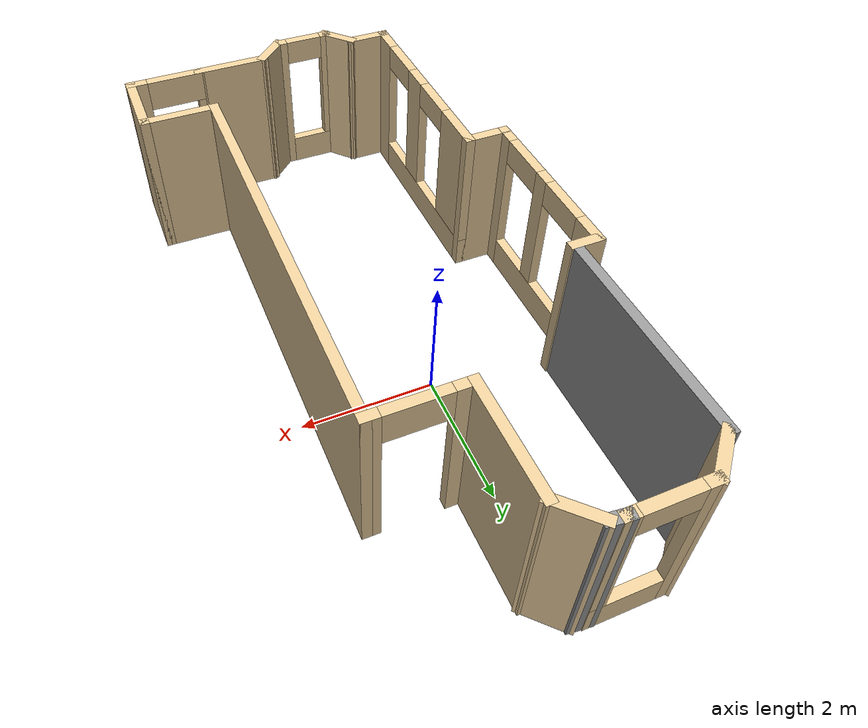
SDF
<?xml version='1.0'?>
<sdf version='1.6'>
  <model name='home_v4'>
    <pose frame=''>0.364462 -1.06158 0 0 -0 0</pose>
    <link name='Wall_0'>
      <collision name='Wall_0_Collision'>
        <geometry>
          <box>
            <size>1.25 0.15 2.5</size>
          </box>
        </geometry>
        <pose frame=''>0 0 1.25 0 -0 0</pose>
      </collision>
      <visual name='Wall_0_Visual'>
        <pose frame=''>0 0 1.25 0 -0 0</pose>
        <geometry>
          <box>
            <size>1.25 0.15 2.5</size>
          </box>
        </geometry>
        <material>
          <script>
            <uri>file://media/materials/scripts/gazebo.material</uri>
            <name>Gazebo/Grey</name>
          </script>
          <ambient>0.921569 0.807843 0.615686 1</ambient>
        </material>
        <meta>
          <layer>0</layer>
        </meta>
      </visual>
      <pose frame=''>0.840711 -4.55456 0 0 -0 3.14159</pose>
    </link>
    <link name='Wall_10'>
      <collision name='Wall_10_Collision'>
        <geometry>
          <box>
            <size>0.518694 0.15 2.5</size>
          </box>
        </geometry>
        <pose frame=''>0 0 1.25 0 -0 0</pose>
      </collision>
      <visual name='Wall_10_Visual'>
        <pose frame=''>0 0 1.25 0 -0 0</pose>
        <geometry>
          <box>
            <size>0.518694 0.15 2.5</size>
          </box>
        </geometry>
        <material>
          <script>
            <uri>file://media/materials/scripts/gazebo.material</uri>
            <name>Gazebo/Grey</name>
          </script>
          <ambient>0.921569 0.807843 0.615686 1</ambient>
        </material>
        <meta>
          <layer>0</layer>
        </meta>
      </visual>
      <pose frame=''>-2.31992 1.39544 0 0 -0 0</pose>
    </link>
    <link name='Wall_12'>
      <collision name='Wall_12_Collision'>
        <geometry>
          <box>
            <size>3.25 0.15 2.5</size>
          </box>
        </geometry>
        <pose frame=''>0 0 1.25 0 -0 0</pose>
      </collision>
      <visual name='Wall_12_Visual'>
        <pose frame=''>0 0 1.25 0 -0 0</pose>
        <geometry>
          <box>
            <size>3.25 0.15 2.5</size>
          </box>
        </geometry>
        <material>
          <script>
            <uri>file://media/materials/scripts/gazebo.material</uri>
            <name>Gazebo/Grey</name>
          </script>
          <ambient>1 1 1 1</ambient>
        </material>
        <meta>
          <layer>0</layer>
        </meta>
      </visual>
      <pose frame=''>-2.1587 2.94544 0 0 -0 1.5708</pose>
    </link>
    <link name='Wall_14'>
      <collision name='Wall_14_Collision'>
        <geometry>
          <box>
            <size>0.782712 0.15 2.5</size>
          </box>
        </geometry>
        <pose frame=''>0 0 1.25 0 -0 0</pose>
      </collision>
      <visual name='Wall_14_Visual'>
        <pose frame=''>0 0 1.25 0 -0 0</pose>
        <geometry>
          <box>
            <size>0.782712 0.15 2.5</size>
          </box>
        </geometry>
        <material>
          <script>
            <uri>file://media/materials/scripts/gazebo.material</uri>
            <name>Gazebo/Grey</name>
          </script>
          <ambient>0.921569 0.807843 0.615686 1</ambient>
        </material>
        <meta>
          <layer>0</layer>
        </meta>
      </visual>
      <pose frame=''>-1.91187 4.71914 0 0 -0 0.785398</pose>
    </link>
    <link name='Wall_18'>
      <pose frame=''>-1.11505 4.94283 0 0 -0 0</pose>
      <visual name='Wall_18_Visual_0'>
        <pose frame=''>-0.508675 0 1.25 0 -0 0</pose>
        <geometry>
          <box>
            <size>0.23265 0.15 2.5</size>
          </box>
        </geometry>
        <material>
          <script>
            <uri>file://media/materials/scripts/gazebo.material</uri>
            <name>Gazebo/Grey</name>
          </script>
          <ambient>0.921569 0.807843 0.615686 1</ambient>
        </material>
        <meta>
          <layer>0</layer>
        </meta>
      </visual>
      <collision name='Wall_18_Collision_0'>
        <geometry>
          <box>
            <size>0.23265 0.15 2.5</size>
          </box>
        </geometry>
        <pose frame=''>-0.508675 0 1.25 0 -0 0</pose>
      </collision>
      <visual name='Wall_18_Visual_1'>
        <pose frame=''>0.116325 0 0.25 0 -0 0</pose>
        <geometry>
          <box>
            <size>1.01735 0.15 0.5</size>
          </box>
        </geometry>
        <material>
          <script>
            <uri>file://media/materials/scripts/gazebo.material</uri>
            <name>Gazebo/Grey</name>
          </script>
          <ambient>0.921569 0.807843 0.615686 1</ambient>
        </material>
        <meta>
          <layer>0</layer>
        </meta>
      </visual>
      <collision name='Wall_18_Collision_1'>
        <geometry>
          <box>
            <size>1.01735 0.15 0.5</size>
          </box>
        </geometry>
        <pose frame=''>0.116325 0 0.25 0 -0 0</pose>
      </collision>
      <visual name='Wall_18_Visual_2'>
        <pose frame=''>0.516325 0 1.5 0 -0 0</pose>
        <geometry>
          <box>
            <size>0.21735 0.15 2</size>
          </box>
        </geometry>
        <material>
          <script>
            <uri>file://media/materials/scripts/gazebo.material</uri>
            <name>Gazebo/Grey</name>
          </script>
          <ambient>0.921569 0.807843 0.615686 1</ambient>
        </material>
        <meta>
          <layer>0</layer>
        </meta>
      </visual>
      <collision name='Wall_18_Collision_2'>
        <geometry>
          <box>
            <size>0.21735 0.15 2</size>
          </box>
        </geometry>
        <pose frame=''>0.516325 0 1.5 0 -0 0</pose>
      </collision>
      <visual name='Wall_18_Visual_3'>
        <pose frame=''>0.00765 0 2.3 0 -0 0</pose>
        <geometry>
          <box>
            <size>0.8 0.15 0.4</size>
          </box>
        </geometry>
        <material>
          <script>
            <uri>file://media/materials/scripts/gazebo.material</uri>
            <name>Gazebo/Grey</name>
          </script>
          <ambient>0.921569 0.807843 0.615686 1</ambient>
        </material>
        <meta>
          <layer>0</layer>
        </meta>
      </visual>
      <collision name='Wall_18_Collision_3'>
        <geometry>
          <box>
            <size>0.8 0.15 0.4</size>
          </box>
        </geometry>
        <pose frame=''>0.00765 0 2.3 0 -0 0</pose>
      </collision>
    </link>
    <link name='Wall_19'>
      <collision name='Wall_19_Collision'>
        <geometry>
          <box>
            <size>0.369398 0.15 2.5</size>
          </box>
        </geometry>
        <pose frame=''>0 0 1.25 0 -0 0</pose>
      </collision>
      <visual name='Wall_19_Visual'>
        <pose frame=''>0 0 1.25 0 -0 0</pose>
        <geometry>
          <box>
            <size>0.369398 0.15 2.5</size>
          </box>
        </geometry>
        <material>
          <script>
            <uri>file://media/materials/scripts/gazebo.material</uri>
            <name>Gazebo/Grey</name>
          </script>
          <ambient>1 1 1 1</ambient>
        </material>
        <meta>
          <layer>0</layer>
        </meta>
      </visual>
      <pose frame=''>-0.479088 4.93127 0 0 0 -0.105624</pose>
    </link>
    <link name='Wall_2'>
      <collision name='Wall_2_Collision'>
        <geometry>
          <box>
            <size>0.705255 0.15 2.5</size>
          </box>
        </geometry>
        <pose frame=''>0 0 1.25 0 -0 0</pose>
      </collision>
      <visual name='Wall_2_Visual'>
        <pose frame=''>0 0 1.25 0 -0 0</pose>
        <geometry>
          <box>
            <size>0.705255 0.15 2.5</size>
          </box>
        </geometry>
        <material>
          <script>
            <uri>file://media/materials/scripts/gazebo.material</uri>
            <name>Gazebo/Grey</name>
          </script>
          <ambient>0.921569 0.807843 0.615686 1</ambient>
        </material>
        <meta>
          <layer>0</layer>
        </meta>
      </visual>
      <pose frame=''>0.092251 -4.7487 0 0 0 -2.36719</pose>
    </link>
    <link name='Wall_20'>
      <collision name='Wall_20_Collision'>
        <geometry>
          <box>
            <size>0.75 0.15 2.5</size>
          </box>
        </geometry>
        <pose frame=''>0 0 1.25 0 -0 0</pose>
      </collision>
      <visual name='Wall_20_Visual'>
        <pose frame=''>0 0 1.25 0 -0 0</pose>
        <geometry>
          <box>
            <size>0.75 0.15 2.5</size>
          </box>
        </geometry>
        <material>
          <script>
            <uri>file://media/materials/scripts/gazebo.material</uri>
            <name>Gazebo/Grey</name>
          </script>
          <ambient>0.921569 0.807843 0.615686 1</ambient>
        </material>
        <meta>
          <layer>0</layer>
        </meta>
      </visual>
      <pose frame=''>-0.157868 4.70757 0 0 0 -0.785398</pose>
    </link>
    <link name='Wall_21'>
      <collision name='Wall_21_Collision'>
        <geometry>
          <box>
            <size>1.75 0.15 2.5</size>
          </box>
        </geometry>
        <pose frame=''>0 0 1.25 0 -0 0</pose>
      </collision>
      <visual name='Wall_21_Visual'>
        <pose frame=''>0 0 1.25 0 -0 0</pose>
        <geometry>
          <box>
            <size>1.75 0.15 2.5</size>
          </box>
        </geometry>
        <material>
          <script>
            <uri>file://media/materials/scripts/gazebo.material</uri>
            <name>Gazebo/Grey</name>
          </script>
          <ambient>0.921569 0.807843 0.615686 1</ambient>
        </material>
        <meta>
          <layer>0</layer>
        </meta>
      </visual>
      <pose frame=''>0.054264 3.69544 0 0 0 -1.5708</pose>
    </link>
    <link name='Wall_22'>
      <pose frame=''>0.729264 2.89544 0 0 -0 0</pose>
      <visual name='Wall_22_Visual_0'>
        <pose frame=''>-0.581037 0 1.25 0 -0 0</pose>
        <geometry>
          <box>
            <size>0.337926 0.15 2.5</size>
          </box>
        </geometry>
        <material>
          <script>
            <uri>file://media/materials/scripts/gazebo.material</uri>
            <name>Gazebo/Grey</name>
          </script>
          <ambient>0.921569 0.807843 0.615686 1</ambient>
        </material>
        <meta>
          <layer>0</layer>
        </meta>
      </visual>
      <collision name='Wall_22_Collision_0'>
        <geometry>
          <box>
            <size>0.337926 0.15 2.5</size>
          </box>
        </geometry>
        <pose frame=''>-0.581037 0 1.25 0 -0 0</pose>
      </collision>
      <visual name='Wall_22_Visual_1'>
        <pose frame=''>0.618963 0 1.25 0 -0 0</pose>
        <geometry>
          <box>
            <size>0.262074 0.15 2.5</size>
          </box>
        </geometry>
        <material>
          <script>
            <uri>file://media/materials/scripts/gazebo.material</uri>
            <name>Gazebo/Grey</name>
          </script>
          <ambient>0.921569 0.807843 0.615686 1</ambient>
        </material>
        <meta>
          <layer>0</layer>
        </meta>
      </visual>
      <collision name='Wall_22_Collision_1'>
        <geometry>
          <box>
            <size>0.262074 0.15 2.5</size>
          </box>
        </geometry>
        <pose frame=''>0.618963 0 1.25 0 -0 0</pose>
      </collision>
      <visual name='Wall_22_Visual_2'>
        <pose frame=''>0.037926 0 2.25 0 -0 0</pose>
        <geometry>
          <box>
            <size>0.9 0.15 0.5</size>
          </box>
        </geometry>
        <material>
          <script>
            <uri>file://media/materials/scripts/gazebo.material</uri>
            <name>Gazebo/Grey</name>
          </script>
          <ambient>0.921569 0.807843 0.615686 1</ambient>
        </material>
        <meta>
          <layer>0</layer>
        </meta>
      </visual>
      <collision name='Wall_22_Collision_2'>
        <geometry>
          <box>
            <size>0.9 0.15 0.5</size>
          </box>
        </geometry>
        <pose frame=''>0.037926 0 2.25 0 -0 0</pose>
      </collision>
    </link>
    <link name='Wall_24'>
      <collision name='Wall_24_Collision'>
        <geometry>
          <box>
            <size>6.5 0.15 2.5</size>
          </box>
        </geometry>
        <pose frame=''>0 0 1.25 0 -0 0</pose>
      </collision>
      <visual name='Wall_24_Visual'>
        <pose frame=''>0 0 1.25 0 -0 0</pose>
        <geometry>
          <box>
            <size>6.5 0.15 2.5</size>
          </box>
        </geometry>
        <material>
          <script>
            <uri>file://media/materials/scripts/gazebo.material</uri>
            <name>Gazebo/Grey</name>
          </script>
          <ambient>0.921569 0.807843 0.615686 1</ambient>
        </material>
        <meta>
          <layer>0</layer>
        </meta>
      </visual>
      <pose frame=''>1.40426 -0.279559 0 0 0 -1.5708</pose>
    </link>
    <link name='Wall_25'>
      <collision name='Wall_25_Collision'>
        <geometry>
          <box>
            <size>1.25 0.15 2.5</size>
          </box>
        </geometry>
        <pose frame=''>0 0 1.25 0 -0 0</pose>
      </collision>
      <visual name='Wall_25_Visual'>
        <pose frame=''>0 0 1.25 0 -0 0</pose>
        <geometry>
          <box>
            <size>1.25 0.15 2.5</size>
          </box>
        </geometry>
        <material>
          <script>
            <uri>file://media/materials/scripts/gazebo.material</uri>
            <name>Gazebo/Grey</name>
          </script>
          <ambient>0.921569 0.807843 0.615686 1</ambient>
        </material>
        <meta>
          <layer>0</layer>
        </meta>
      </visual>
      <pose frame=''>1.95426 -3.45456 0 0 -0 0</pose>
    </link>
    <link name='Wall_27'>
      <collision name='Wall_27_Collision'>
        <geometry>
          <box>
            <size>1.25 0.15 2.5</size>
          </box>
        </geometry>
        <pose frame=''>0 0 1.25 0 -0 0</pose>
      </collision>
      <visual name='Wall_27_Visual'>
        <pose frame=''>0 0 1.25 0 -0 0</pose>
        <geometry>
          <box>
            <size>1.25 0.15 2.5</size>
          </box>
        </geometry>
        <material>
          <script>
            <uri>file://media/materials/scripts/gazebo.material</uri>
            <name>Gazebo/Grey</name>
          </script>
          <ambient>0.921569 0.807843 0.615686 1</ambient>
        </material>
        <meta>
          <layer>0</layer>
        </meta>
      </visual>
      <pose frame=''>2.50426 -4.00456 0 0 0 -1.5708</pose>
    </link>
    <link name='Wall_28'>
      <pose frame=''>1.94749 -4.55456 0 0 -0 3.14159</pose>
      <visual name='Wall_28_Visual_0'>
        <pose frame=''>-0.463636 0 1.25 0 -0 0</pose>
        <geometry>
          <box>
            <size>0.336282 0.15 2.5</size>
          </box>
        </geometry>
        <material>
          <script>
            <uri>file://media/materials/scripts/gazebo.material</uri>
            <name>Gazebo/Grey</name>
          </script>
          <ambient>0.921569 0.807843 0.615686 1</ambient>
        </material>
        <meta>
          <layer>0</layer>
        </meta>
      </visual>
      <collision name='Wall_28_Collision_0'>
        <geometry>
          <box>
            <size>0.336282 0.15 2.5</size>
          </box>
        </geometry>
        <pose frame=''>-0.463636 0 1.25 0 -0 0</pose>
      </collision>
      <visual name='Wall_28_Visual_1'>
        <pose frame=''>0.618141 0 1.25 0 -0 0</pose>
        <geometry>
          <box>
            <size>0.027271 0.15 2.5</size>
          </box>
        </geometry>
        <material>
          <script>
            <uri>file://media/materials/scripts/gazebo.material</uri>
            <name>Gazebo/Grey</name>
          </script>
          <ambient>0.921569 0.807843 0.615686 1</ambient>
        </material>
        <meta>
          <layer>0</layer>
        </meta>
      </visual>
      <collision name='Wall_28_Collision_1'>
        <geometry>
          <box>
            <size>0.027271 0.15 2.5</size>
          </box>
        </geometry>
        <pose frame=''>0.618141 0 1.25 0 -0 0</pose>
      </collision>
      <visual name='Wall_28_Visual_2'>
        <pose frame=''>0.154505 0 2.25 0 -0 0</pose>
        <geometry>
          <box>
            <size>0.9 0.15 0.5</size>
          </box>
        </geometry>
        <material>
          <script>
            <uri>file://media/materials/scripts/gazebo.material</uri>
            <name>Gazebo/Grey</name>
          </script>
          <ambient>0.921569 0.807843 0.615686 1</ambient>
        </material>
        <meta>
          <layer>0</layer>
        </meta>
      </visual>
      <collision name='Wall_28_Collision_2'>
        <geometry>
          <box>
            <size>0.9 0.15 0.5</size>
          </box>
        </geometry>
        <pose frame=''>0.154505 0 2.25 0 -0 0</pose>
      </collision>
    </link>
    <link name='Wall_3'>
      <pose frame=''>-0.531209 -4.92273 0 0 -0 3.14159</pose>
      <visual name='Wall_3_Visual_0'>
        <pose frame=''>-0.395508 0 1.25 0 -0 0</pose>
        <geometry>
          <box>
            <size>0.208983 0.15 2.5</size>
          </box>
        </geometry>
        <material>
          <script>
            <uri>file://media/materials/scripts/gazebo.material</uri>
            <name>Gazebo/Grey</name>
          </script>
          <ambient>0.921569 0.807843 0.615686 1</ambient>
        </material>
        <meta>
          <layer>0</layer>
        </meta>
      </visual>
      <collision name='Wall_3_Collision_0'>
        <geometry>
          <box>
            <size>0.208983 0.15 2.5</size>
          </box>
        </geometry>
        <pose frame=''>-0.395508 0 1.25 0 -0 0</pose>
      </collision>
      <visual name='Wall_3_Visual_1'>
        <pose frame=''>0.104492 0 0.25 0 -0 0</pose>
        <geometry>
          <box>
            <size>0.791017 0.15 0.5</size>
          </box>
        </geometry>
        <material>
          <script>
            <uri>file://media/materials/scripts/gazebo.material</uri>
            <name>Gazebo/Grey</name>
          </script>
          <ambient>0.921569 0.807843 0.615686 1</ambient>
        </material>
        <meta>
          <layer>0</layer>
        </meta>
      </visual>
      <collision name='Wall_3_Collision_1'>
        <geometry>
          <box>
            <size>0.791017 0.15 0.5</size>
          </box>
        </geometry>
        <pose frame=''>0.104492 0 0.25 0 -0 0</pose>
      </collision>
      <visual name='Wall_3_Visual_2'>
        <pose frame=''>0.404492 0 1.5 0 -0 0</pose>
        <geometry>
          <box>
            <size>0.191017 0.15 2</size>
          </box>
        </geometry>
        <material>
          <script>
            <uri>file://media/materials/scripts/gazebo.material</uri>
            <name>Gazebo/Grey</name>
          </script>
          <ambient>0.921569 0.807843 0.615686 1</ambient>
        </material>
        <meta>
          <layer>0</layer>
        </meta>
      </visual>
      <collision name='Wall_3_Collision_2'>
        <geometry>
          <box>
            <size>0.191017 0.15 2</size>
          </box>
        </geometry>
        <pose frame=''>0.404492 0 1.5 0 -0 0</pose>
      </collision>
      <visual name='Wall_3_Visual_3'>
        <pose frame=''>0.008983 0 2.3 0 -0 0</pose>
        <geometry>
          <box>
            <size>0.6 0.15 0.4</size>
          </box>
        </geometry>
        <material>
          <script>
            <uri>file://media/materials/scripts/gazebo.material</uri>
            <name>Gazebo/Grey</name>
          </script>
          <ambient>0.921569 0.807843 0.615686 1</ambient>
        </material>
        <meta>
          <layer>0</layer>
        </meta>
      </visual>
      <collision name='Wall_3_Collision_3'>
        <geometry>
          <box>
            <size>0.6 0.15 0.4</size>
          </box>
        </geometry>
        <pose frame=''>0.008983 0 2.3 0 -0 0</pose>
      </collision>
    </link>
    <link name='Wall_4'>
      <collision name='Wall_4_Collision'>
        <geometry>
          <box>
            <size>0.671446 0.15 2.5</size>
          </box>
        </geometry>
        <pose frame=''>0 0 1.25 0 -0 0</pose>
      </collision>
      <visual name='Wall_4_Visual'>
        <pose frame=''>0 0 1.25 0 -0 0</pose>
        <geometry>
          <box>
            <size>0.671446 0.15 2.5</size>
          </box>
        </geometry>
        <material>
          <script>
            <uri>file://media/materials/scripts/gazebo.material</uri>
            <name>Gazebo/Grey</name>
          </script>
          <ambient>0.921569 0.807843 0.615686 1</ambient>
        </material>
        <meta>
          <layer>0</layer>
        </meta>
      </visual>
      <pose frame=''>-1.13024 -4.7487 0 0 -0 2.30162</pose>
    </link>
    <link name='Wall_5'>
      <collision name='Wall_5_Collision'>
        <geometry>
          <box>
            <size>0.75 0.15 2.5</size>
          </box>
        </geometry>
        <pose frame=''>0 0 1.25 0 -0 0</pose>
      </collision>
      <visual name='Wall_5_Visual'>
        <pose frame=''>0 0 1.25 0 -0 0</pose>
        <geometry>
          <box>
            <size>0.75 0.15 2.5</size>
          </box>
        </geometry>
        <material>
          <script>
            <uri>file://media/materials/scripts/gazebo.material</uri>
            <name>Gazebo/Grey</name>
          </script>
          <ambient>0.921569 0.807843 0.615686 1</ambient>
        </material>
        <meta>
          <layer>0</layer>
        </meta>
      </visual>
      <pose frame=''>-1.60426 -4.55456 0 0 -0 3.14159</pose>
    </link>
    <link name='Wall_6'>
      <pose frame=''>-1.90426 -2.87956 0 0 -0 1.5708</pose>
      <visual name='Wall_6_Visual_0'>
        <pose frame=''>-1.47 0 1.25 0 -0 0</pose>
        <geometry>
          <box>
            <size>0.559997 0.15 2.5</size>
          </box>
        </geometry>
        <material>
          <script>
            <uri>file://media/materials/scripts/gazebo.material</uri>
            <name>Gazebo/Grey</name>
          </script>
          <ambient>0.921569 0.807843 0.615686 1</ambient>
        </material>
        <meta>
          <layer>0</layer>
        </meta>
      </visual>
      <collision name='Wall_6_Collision_0'>
        <geometry>
          <box>
            <size>0.559997 0.15 2.5</size>
          </box>
        </geometry>
        <pose frame=''>-1.47 0 1.25 0 -0 0</pose>
      </collision>
      <visual name='Wall_6_Visual_1'>
        <pose frame=''>0.279999 0 0.25 0 -0 0</pose>
        <geometry>
          <box>
            <size>2.94 0.15 0.5</size>
          </box>
        </geometry>
        <material>
          <script>
            <uri>file://media/materials/scripts/gazebo.material</uri>
            <name>Gazebo/Grey</name>
          </script>
          <ambient>0.921569 0.807843 0.615686 1</ambient>
        </material>
        <meta>
          <layer>0</layer>
        </meta>
      </visual>
      <collision name='Wall_6_Collision_1'>
        <geometry>
          <box>
            <size>2.94 0.15 0.5</size>
          </box>
        </geometry>
        <pose frame=''>0.279999 0 0.25 0 -0 0</pose>
      </collision>
      <visual name='Wall_6_Visual_2'>
        <pose frame=''>-0.156425 0 1.5 0 -0 0</pose>
        <geometry>
          <box>
            <size>0.467155 0.15 2</size>
          </box>
        </geometry>
        <material>
          <script>
            <uri>file://media/materials/scripts/gazebo.material</uri>
            <name>Gazebo/Grey</name>
          </script>
          <ambient>0.921569 0.807843 0.615686 1</ambient>
        </material>
        <meta>
          <layer>0</layer>
        </meta>
      </visual>
      <collision name='Wall_6_Collision_2'>
        <geometry>
          <box>
            <size>0.467155 0.15 2</size>
          </box>
        </geometry>
        <pose frame=''>-0.156425 0 1.5 0 -0 0</pose>
      </collision>
      <visual name='Wall_6_Visual_3'>
        <pose frame=''>1.31358 0 1.5 0 -0 0</pose>
        <geometry>
          <box>
            <size>0.872848 0.15 2</size>
          </box>
        </geometry>
        <material>
          <script>
            <uri>file://media/materials/scripts/gazebo.material</uri>
            <name>Gazebo/Grey</name>
          </script>
          <ambient>0.921569 0.807843 0.615686 1</ambient>
        </material>
        <meta>
          <layer>0</layer>
        </meta>
      </visual>
      <collision name='Wall_6_Collision_3'>
        <geometry>
          <box>
            <size>0.872848 0.15 2</size>
          </box>
        </geometry>
        <pose frame=''>1.31358 0 1.5 0 -0 0</pose>
      </collision>
      <visual name='Wall_6_Visual_4'>
        <pose frame=''>-0.790003 0 2.3 0 -0 0</pose>
        <geometry>
          <box>
            <size>0.8 0.15 0.4</size>
          </box>
        </geometry>
        <material>
          <script>
            <uri>file://media/materials/scripts/gazebo.material</uri>
            <name>Gazebo/Grey</name>
          </script>
          <ambient>0.921569 0.807843 0.615686 1</ambient>
        </material>
        <meta>
          <layer>0</layer>
        </meta>
      </visual>
      <collision name='Wall_6_Collision_4'>
        <geometry>
          <box>
            <size>0.8 0.15 0.4</size>
          </box>
        </geometry>
        <pose frame=''>-0.790003 0 2.3 0 -0 0</pose>
      </collision>
      <visual name='Wall_6_Visual_5'>
        <pose frame=''>0.477152 0 2.3 0 -0 0</pose>
        <geometry>
          <box>
            <size>0.8 0.15 0.4</size>
          </box>
        </geometry>
        <material>
          <script>
            <uri>file://media/materials/scripts/gazebo.material</uri>
            <name>Gazebo/Grey</name>
          </script>
          <ambient>0.921569 0.807843 0.615686 1</ambient>
        </material>
        <meta>
          <layer>0</layer>
        </meta>
      </visual>
      <collision name='Wall_6_Collision_5'>
        <geometry>
          <box>
            <size>0.8 0.15 0.4</size>
          </box>
        </geometry>
        <pose frame=''>0.477152 0 2.3 0 -0 0</pose>
      </collision>
    </link>
    <link name='Wall_8'>
      <collision name='Wall_8_Collision'>
        <geometry>
          <box>
            <size>0.75 0.15 2.5</size>
          </box>
        </geometry>
        <pose frame=''>0 0 1.25 0 -0 0</pose>
      </collision>
      <visual name='Wall_8_Visual'>
        <pose frame=''>0 0 1.25 0 -0 0</pose>
        <geometry>
          <box>
            <size>0.75 0.15 2.5</size>
          </box>
        </geometry>
        <material>
          <script>
            <uri>file://media/materials/scripts/gazebo.material</uri>
            <name>Gazebo/Grey</name>
          </script>
          <ambient>0.921569 0.807843 0.615686 1</ambient>
        </material>
        <meta>
          <layer>0</layer>
        </meta>
      </visual>
      <pose frame=''>-2.20426 -1.20456 0 0 -0 3.14159</pose>
    </link>
    <link name='Wall_9'>
      <pose frame=''>-2.50426 0.095441 0 0 -0 1.5708</pose>
      <visual name='Wall_9_Visual_0'>
        <pose frame=''>-1.19109 0 1.25 0 -0 0</pose>
        <geometry>
          <box>
            <size>0.367828 0.15 2.5</size>
          </box>
        </geometry>
        <material>
          <script>
            <uri>file://media/materials/scripts/gazebo.material</uri>
            <name>Gazebo/Grey</name>
          </script>
          <ambient>0.921569 0.807843 0.615686 1</ambient>
        </material>
        <meta>
          <layer>0</layer>
        </meta>
      </visual>
      <collision name='Wall_9_Collision_0'>
        <geometry>
          <box>
            <size>0.367828 0.15 2.5</size>
          </box>
        </geometry>
        <pose frame=''>-1.19109 0 1.25 0 -0 0</pose>
      </collision>
      <visual name='Wall_9_Visual_1'>
        <pose frame=''>0.183914 0 0.25 0 -0 0</pose>
        <geometry>
          <box>
            <size>2.38217 0.15 0.5</size>
          </box>
        </geometry>
        <material>
          <script>
            <uri>file://media/materials/scripts/gazebo.material</uri>
            <name>Gazebo/Grey</name>
          </script>
          <ambient>0.921569 0.807843 0.615686 1</ambient>
        </material>
        <meta>
          <layer>0</layer>
        </meta>
      </visual>
      <collision name='Wall_9_Collision_1'>
        <geometry>
          <box>
            <size>2.38217 0.15 0.5</size>
          </box>
        </geometry>
        <pose frame=''>0.183914 0 0.25 0 -0 0</pose>
      </collision>
      <visual name='Wall_9_Visual_2'>
        <pose frame=''>-0.074162 0 1.5 0 -0 0</pose>
        <geometry>
          <box>
            <size>0.266019 0.15 2</size>
          </box>
        </geometry>
        <material>
          <script>
            <uri>file://media/materials/scripts/gazebo.material</uri>
            <name>Gazebo/Grey</name>
          </script>
          <ambient>0.921569 0.807843 0.615686 1</ambient>
        </material>
        <meta>
          <layer>0</layer>
        </meta>
      </visual>
      <collision name='Wall_9_Collision_2'>
        <geometry>
          <box>
            <size>0.266019 0.15 2</size>
          </box>
        </geometry>
        <pose frame=''>-0.074162 0 1.5 0 -0 0</pose>
      </collision>
      <visual name='Wall_9_Visual_3'>
        <pose frame=''>1.11692 0 1.5 0 -0 0</pose>
        <geometry>
          <box>
            <size>0.516153 0.15 2</size>
          </box>
        </geometry>
        <material>
          <script>
            <uri>file://media/materials/scripts/gazebo.material</uri>
            <name>Gazebo/Grey</name>
          </script>
          <ambient>0.921569 0.807843 0.615686 1</ambient>
        </material>
        <meta>
          <layer>0</layer>
        </meta>
      </visual>
      <collision name='Wall_9_Collision_3'>
        <geometry>
          <box>
            <size>0.516153 0.15 2</size>
          </box>
        </geometry>
        <pose frame=''>1.11692 0 1.5 0 -0 0</pose>
      </collision>
      <visual name='Wall_9_Visual_4'>
        <pose frame=''>-0.607172 0 2.3 0 -0 0</pose>
        <geometry>
          <box>
            <size>0.8 0.15 0.4</size>
          </box>
        </geometry>
        <material>
          <script>
            <uri>file://media/materials/scripts/gazebo.material</uri>
            <name>Gazebo/Grey</name>
          </script>
          <ambient>0.921569 0.807843 0.615686 1</ambient>
        </material>
        <meta>
          <layer>0</layer>
        </meta>
      </visual>
      <collision name='Wall_9_Collision_4'>
        <geometry>
          <box>
            <size>0.8 0.15 0.4</size>
          </box>
        </geometry>
        <pose frame=''>-0.607172 0 2.3 0 -0 0</pose>
      </collision>
      <visual name='Wall_9_Visual_5'>
        <pose frame=''>0.458847 0 2.3 0 -0 0</pose>
        <geometry>
          <box>
            <size>0.8 0.15 0.4</size>
          </box>
        </geometry>
        <material>
          <script>
            <uri>file://media/materials/scripts/gazebo.material</uri>
            <name>Gazebo/Grey</name>
          </script>
          <ambient>0.921569 0.807843 0.615686 1</ambient>
        </material>
        <meta>
          <layer>0</layer>
        </meta>
      </visual>
      <collision name='Wall_9_Collision_5'>
        <geometry>
          <box>
            <size>0.8 0.15 0.4</size>
          </box>
        </geometry>
        <pose frame=''>0.458847 0 2.3 0 -0 0</pose>
      </collision>
    </link>
    <static>1</static>
  </model>
</sdf>
